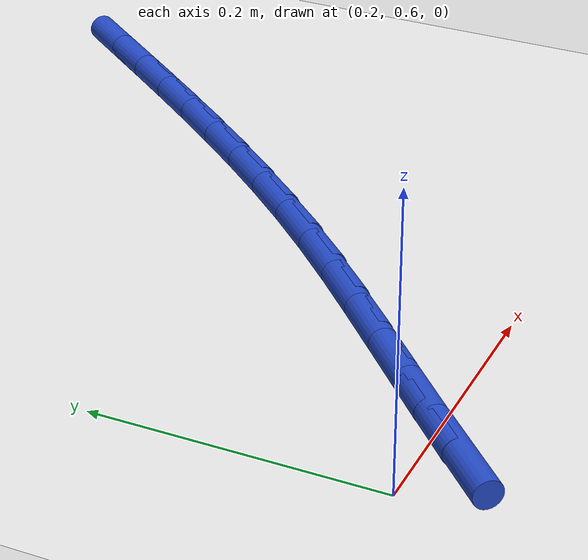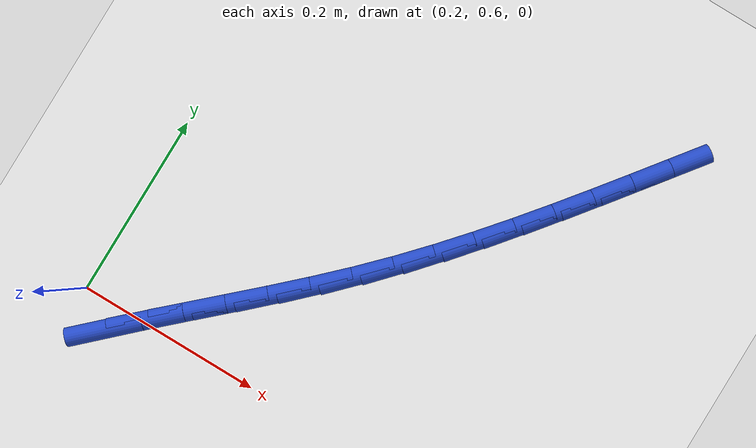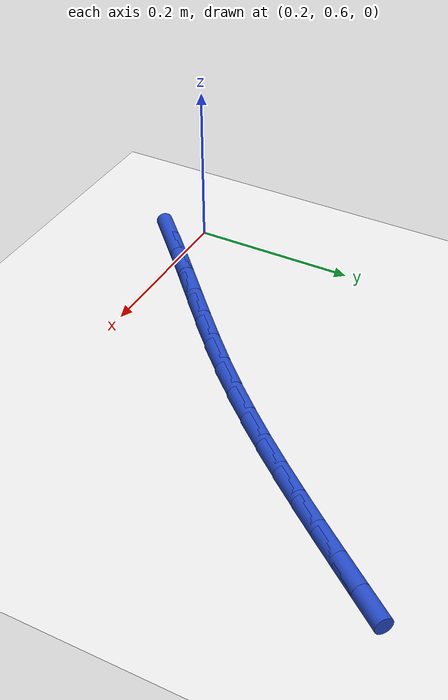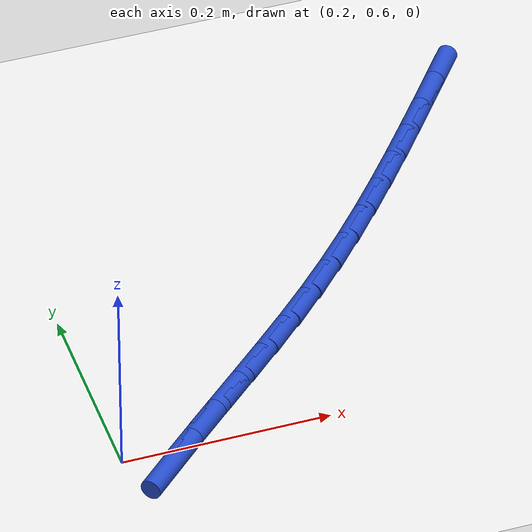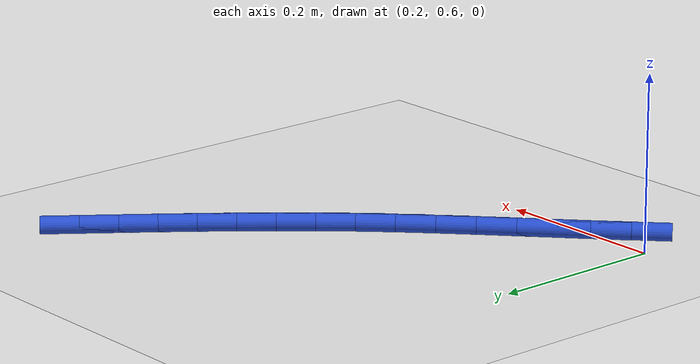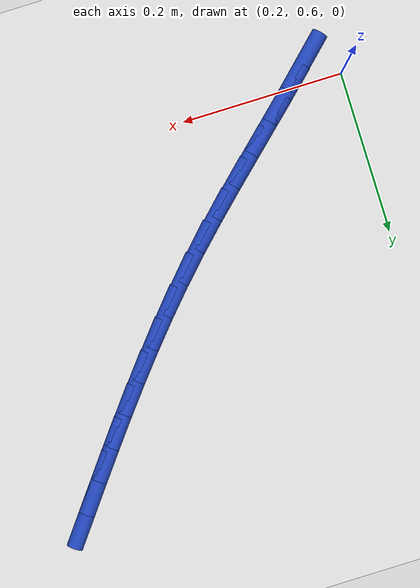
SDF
<sdf version="1.6">
 <world name="default">
  <model name="ground_plane">
   <static>1</static>
   <link name="link">
    <collision name="collision">
     <geometry><plane><normal>0 0 1</normal><size>100 100</size></plane></geometry>
     <surface><friction><ode><mu>100</mu><mu2>50</mu2></ode></friction></surface>
    </collision>
    <visual name="visual">
     <cast_shadows>0</cast_shadows>
     <geometry><plane><normal>0 0 1</normal><size>100 100</size></plane></geometry>
     <material>
      <script><uri>file://media/materials/scripts/gazebo.material</uri><name>Gazebo/WhiteGlow</name></script>
     </material>
    </visual>
   </link>
  </model>
  <model name="line">
   <link name="link_15">
    <pose>0.23972390275008787 0.5746009378551522 0.01 0 1.57 0.7612968677047302</pose>
    <collision name="collision">
     <geometry><cylinder><radius>0.01</radius><length>0.08</length></cylinder></geometry>
    </collision>
    <visual name="visual">
     <material>
      <script><name>Gazebo/Blue</name><uri>file://media/materials/scripts/gazebo.material</uri></script>
     </material>
     <geometry><cylinder><radius>0.01</radius><length>0.08</length></cylinder></geometry>
    </visual>
   </link>
   <link name="link_16">
    <pose>0.2715502998454788 0.6049290408481215 0.01 0 1.57 0.7484507942404208</pose>
    <collision name="collision">
     <geometry><cylinder><radius>0.01</radius><length>0.08</length></cylinder></geometry>
    </collision>
    <visual name="visual">
     <material>
      <script><name>Gazebo/Blue</name><uri>file://media/materials/scripts/gazebo.material</uri></script>
     </material>
     <geometry><cylinder><radius>0.01</radius><length>0.08</length></cylinder></geometry>
    </visual>
   </link>
   <link name="link_17">
    <pose>0.3039159697516995 0.6349872621344094 0.01 0 1.57 0.7436574778819449</pose>
    <collision name="collision">
     <geometry><cylinder><radius>0.01</radius><length>0.08</length></cylinder></geometry>
    </collision>
    <visual name="visual">
     <material>
      <script><name>Gazebo/Blue</name><uri>file://media/materials/scripts/gazebo.material</uri></script>
     </material>
     <geometry><cylinder><radius>0.01</radius><length>0.08</length></cylinder></geometry>
    </visual>
   </link>
   <link name="link_18">
    <pose>0.3364982187922882 0.6649570297156315 0.01 0 1.57 0.7468270247068363</pose>
    <collision name="collision">
     <geometry><cylinder><radius>0.01</radius><length>0.08</length></cylinder></geometry>
    </collision>
    <visual name="visual">
     <material>
      <script><name>Gazebo/Blue</name><uri>file://media/materials/scripts/gazebo.material</uri></script>
     </material>
     <geometry><cylinder><radius>0.01</radius><length>0.08</length></cylinder></geometry>
    </visual>
   </link>
   <link name="link_19">
    <pose>0.3689743532907821 0.695019771593402 0.01 0 1.57 0.7579914405183313</pose>
    <collision name="collision">
     <geometry><cylinder><radius>0.01</radius><length>0.08</length></cylinder></geometry>
    </collision>
    <visual name="visual">
     <material>
      <script><name>Gazebo/Blue</name><uri>file://media/materials/scripts/gazebo.material</uri></script>
     </material>
     <geometry><cylinder><radius>0.01</radius><length>0.08</length></cylinder></geometry>
    </visual>
   </link>
   <link name="link_20">
    <pose>0.4010216795707194 0.7253569157693355 0.01 0 1.57 0.7772994575990935</pose>
    <collision name="collision">
     <geometry><cylinder><radius>0.01</radius><length>0.08</length></cylinder></geometry>
    </collision>
    <visual name="visual">
     <material>
      <script><name>Gazebo/Blue</name><uri>file://media/materials/scripts/gazebo.material</uri></script>
     </material>
     <geometry><cylinder><radius>0.01</radius><length>0.08</length></cylinder></geometry>
    </visual>
   </link>
   <link name="link_21">
    <pose>0.4323175039556376 0.7561498902450466 0.01 0 1.57 0.8044462042061874</pose>
    <collision name="collision">
     <geometry><cylinder><radius>0.01</radius><length>0.08</length></cylinder></geometry>
    </collision>
    <visual name="visual">
     <material>
      <script><name>Gazebo/Blue</name><uri>file://media/materials/scripts/gazebo.material</uri></script>
     </material>
     <geometry><cylinder><radius>0.01</radius><length>0.08</length></cylinder></geometry>
    </visual>
   </link>
   <link name="link_22">
    <pose>0.46256096367066835 0.787568024591761 0.01 0 1.57 0.8327519605443752</pose>
    <collision name="collision">
     <geometry><cylinder><radius>0.01</radius><length>0.08</length></cylinder></geometry>
    </collision>
    <visual name="visual">
     <material>
      <script><name>Gazebo/Blue</name><uri>file://media/materials/scripts/gazebo.material</uri></script>
     </material>
     <geometry><cylinder><radius>0.01</radius><length>0.08</length></cylinder></geometry>
    </visual>
   </link>
   <link name="link_23">
    <pose>0.4917221097521488 0.8196305111143997 0.01 0 1.57 0.8574478159559658</pose>
    <collision name="collision">
     <geometry><cylinder><radius>0.01</radius><length>0.08</length></cylinder></geometry>
    </collision>
    <visual name="visual">
     <material>
      <script><name>Gazebo/Blue</name><uri>file://media/materials/scripts/gazebo.material</uri></script>
     </material>
     <geometry><cylinder><radius>0.01</radius><length>0.08</length></cylinder></geometry>
    </visual>
   </link>
   <link name="link_24">
    <pose>0.5199542696768519 0.8522549724576928 0.01 0 1.57 0.8782935683910906</pose>
    <collision name="collision">
     <geometry><cylinder><radius>0.01</radius><length>0.08</length></cylinder></geometry>
    </collision>
    <visual name="visual">
     <material>
      <script><name>Gazebo/Blue</name><uri>file://media/materials/scripts/gazebo.material</uri></script>
     </material>
     <geometry><cylinder><radius>0.01</radius><length>0.08</length></cylinder></geometry>
    </visual>
   </link>
   <link name="link_25">
    <pose>0.5474142308248384 0.8853571138284262 0.01 0 1.57 0.8951798627621346</pose>
    <collision name="collision">
     <geometry><cylinder><radius>0.01</radius><length>0.08</length></cylinder></geometry>
    </collision>
    <visual name="visual">
     <material>
      <script><name>Gazebo/Blue</name><uri>file://media/materials/scripts/gazebo.material</uri></script>
     </material>
     <geometry><cylinder><radius>0.01</radius><length>0.08</length></cylinder></geometry>
    </visual>
   </link>
   <link name="link_26">
    <pose>0.5742587805761694 0.9188526404333854 0.01 0 1.57 0.9080330977251189</pose>
    <collision name="collision">
     <geometry><cylinder><radius>0.01</radius><length>0.08</length></cylinder></geometry>
    </collision>
    <visual name="visual">
     <material>
      <script><name>Gazebo/Blue</name><uri>file://media/materials/scripts/gazebo.material</uri></script>
     </material>
     <geometry><cylinder><radius>0.01</radius><length>0.08</length></cylinder></geometry>
    </visual>
   </link>
   <link name="link_27">
    <pose>0.6006447063109055 0.9526572574793559 0.01 0 1.57 0.9168085045590214</pose>
    <collision name="collision">
     <geometry><cylinder><radius>0.01</radius><length>0.08</length></cylinder></geometry>
    </collision>
    <visual name="visual">
     <material>
      <script><name>Gazebo/Blue</name><uri>file://media/materials/scripts/gazebo.material</uri></script>
     </material>
     <geometry><cylinder><radius>0.01</radius><length>0.08</length></cylinder></geometry>
    </visual>
   </link>
   <link name="link_28">
    <pose>0.6267287954091073 0.9866866701731235 0.01 0 1.57 0.9214843861114103</pose>
    <collision name="collision">
     <geometry><cylinder><radius>0.01</radius><length>0.08</length></cylinder></geometry>
    </collision>
    <visual name="visual">
     <material>
      <script><name>Gazebo/Blue</name><uri>file://media/materials/scripts/gazebo.material</uri></script>
     </material>
     <geometry><cylinder><radius>0.01</radius><length>0.08</length></cylinder></geometry>
    </visual>
   </link>
   <link name="link_29">
    <pose>0.6526678352508362 1.0208565837214745 0.01 0 1.57 0.9220579324590353</pose>
    <collision name="collision">
     <geometry><cylinder><radius>0.01</radius><length>0.08</length></cylinder></geometry>
    </collision>
    <visual name="visual">
     <material>
      <script><name>Gazebo/Blue</name><uri>file://media/materials/scripts/gazebo.material</uri></script>
     </material>
     <geometry><cylinder><radius>0.01</radius><length>0.08</length></cylinder></geometry>
    </visual>
   </link>
  </model>
 </world>
</sdf>
